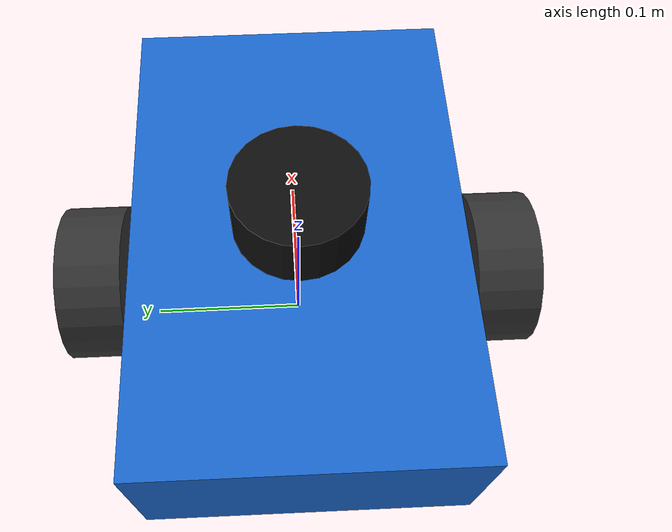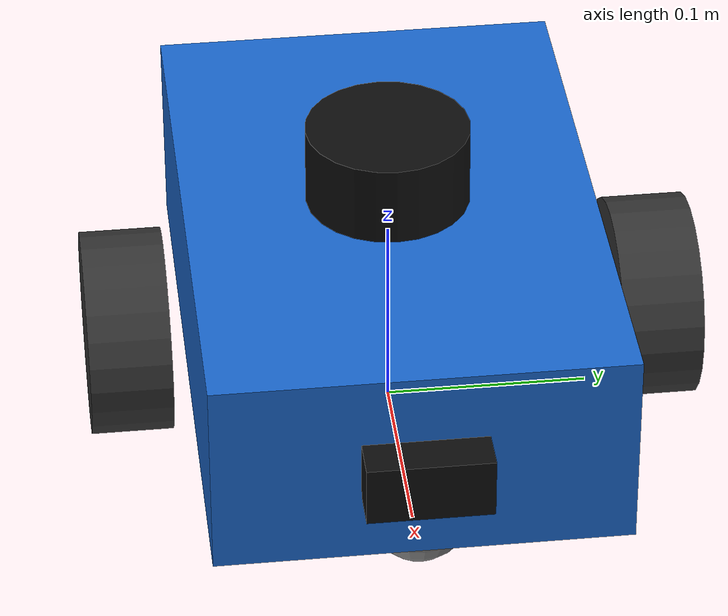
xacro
<?xml version="1.0"?>
<!-- Copyright 2026 Paulo
     Licensed under the Apache License, Version 2.0
     http://www.apache.org/licenses/LICENSE-2.0 -->
<robot name="robot" xmlns:xacro="http://www.ros.org/wiki/xacro">

  <!-- ── global parameters ── -->
  <xacro:property name="chassis_length" value="0.30"/>
  <xacro:property name="chassis_width"  value="0.20"/>
  <xacro:property name="chassis_height" value="0.10"/>
  <xacro:property name="chassis_mass"   value="2.0"/>

  <xacro:property name="wheel_radius"   value="0.05"/>
  <xacro:property name="wheel_width"    value="0.04"/>
  <xacro:property name="wheel_mass"     value="0.3"/>
  <xacro:property name="wheel_offset_y" value="0.13"/>
  <xacro:property name="wheel_offset_z" value="-0.02"/>

  <xacro:property name="caster_radius"  value="0.025"/>
  <xacro:property name="caster_mass"    value="0.1"/>

  <xacro:property name="camera_length"  value="0.02"/>
  <xacro:property name="camera_width"   value="0.06"/>
  <xacro:property name="camera_height"  value="0.03"/>
  <xacro:property name="camera_mass"    value="0.05"/>

  <xacro:property name="base_height"    value="${wheel_radius - wheel_offset_z}"/>

  <!-- ── Macro: Box inertia ── -->
  <xacro:macro name="inertia_box" params="mass l w h">
    <inertial>
      <mass value="${mass}"/>
      <inertia
        ixx="${(1/12)*mass*(w*w + h*h)}"
        iyy="${(1/12)*mass*(l*l + h*h)}"
        izz="${(1/12)*mass*(l*l + w*w)}"
        ixy="0" ixz="0" iyz="0"/>
    </inertial>
  </xacro:macro>

  <!-- ── Macro: cyylinder inertia ── -->
  <xacro:macro name="inertia_cylinder" params="mass r h">
    <inertial>
      <mass value="${mass}"/>
      <inertia
        ixx="${(1/12)*mass*(3*r*r + h*h)}"
        iyy="${(1/12)*mass*(3*r*r + h*h)}"
        izz="${(1/2)*mass*r*r}"
        ixy="0" ixz="0" iyz="0"/>
    </inertial>
  </xacro:macro>

  <!-- ── Macro: wheel (reusable for left and right) ── -->
  <xacro:macro name="wheel" params="name y_offset">
    <link name="${name}_wheel">
      <visual>
        <geometry>
          <cylinder radius="${wheel_radius}" length="${wheel_width}"/>
        </geometry>
        <material name="dark_gray">
          <color rgba="0.2 0.2 0.2 1"/>
        </material>
      </visual>
      <collision>
        <geometry>
          <sphere radius="${wheel_radius}"/>
        </geometry>
      </collision>
      <xacro:inertia_cylinder
        mass="${wheel_mass}"
        r="${wheel_radius}"
        h="${wheel_width}"/>
    </link>

    <joint name="${name}_wheel_joint" type="continuous">
      <parent link="base_link"/>
      <child  link="${name}_wheel"/>
      <!-- The wheel is located on the side of the chassis, rotated -90° on the X-axis
           so the joint axis (z) points to +Y: positive velocity = forward -->
      <origin xyz="0 ${y_offset} ${wheel_offset_z}"
              rpy="${-pi/2} 0 0"/>
      <axis xyz="0 0 1"/>
    </joint>
  </xacro:macro>

  <!-- ══════════════════════════════════════════
       LINKS E JOINTS
  ══════════════════════════════════════════ -->

  <!-- base_footprint: point on the ground, center of the robot -->
  <link name="base_footprint"/>

  <!-- base_link: geometric center of the chassis -->
  <link name="base_link">
    <visual>
      <geometry>
        <box size="${chassis_length} ${chassis_width} ${chassis_height}"/>
      </geometry>
      <material name="blue">
        <color rgba="0.1 0.4 0.8 1"/>
      </material>
    </visual>
    <collision>
      <geometry>
        <box size="${chassis_length} ${chassis_width} ${chassis_height}"/>
      </geometry>
    </collision>
    <xacro:inertia_box
      mass="${chassis_mass}"
      l="${chassis_length}"
      w="${chassis_width}"
      h="${chassis_height}"/>
  </link>

  <joint name="base_footprint_joint" type="fixed">
    <parent link="base_footprint"/>
    <child  link="base_link"/>
    <!-- the chassis is raised so the wheels rest on the ground -->
    <origin xyz="0 0 ${base_height}" rpy="0 0 0"/>
  </joint>

  <!-- Drive wheels (reused macro) -->
  <xacro:wheel name="left"  y_offset=" ${wheel_offset_y}"/>
  <xacro:wheel name="right" y_offset="-${wheel_offset_y}"/>

  <!-- Front support wheel (caster) -->
  <link name="caster_wheel">
    <visual>
      <geometry><sphere radius="${caster_radius}"/></geometry>
      <material name="gray"><color rgba="0.5 0.5 0.5 1"/></material>
    </visual>
    <collision>
      <geometry><sphere radius="${caster_radius}"/></geometry>
    </collision>
    <inertial>
      <mass value="${caster_mass}"/>
      <inertia ixx="0.0001" iyy="0.0001" izz="0.0001"
               ixy="0" ixz="0" iyz="0"/>
    </inertial>
  </link>

  <joint name="caster_joint" type="fixed">
    <parent link="base_link"/>
    <child  link="caster_wheel"/>
    <!-- caster center is caster_radius above the ground, so it touches the
         floor at the same height as the drive wheels -->
    <origin xyz="${chassis_length/2 - caster_radius} 0
                 ${caster_radius - base_height}"
            rpy="0 0 0"/>
  </joint>

  <!-- Lidar Support -->
  <link name="lidar_link">
    <visual>
      <geometry><cylinder radius="0.04" length="0.04"/></geometry>
      <material name="black"><color rgba="0.05 0.05 0.05 1"/></material>
    </visual>
    <collision>
      <geometry><cylinder radius="0.04" length="0.04"/></geometry>
    </collision>
    <inertial>
      <mass value="0.1"/>
      <inertia ixx="0.00003" iyy="0.00003" izz="0.00005"
               ixy="0" ixz="0" iyz="0"/>
    </inertial>
  </link>

  <joint name="lidar_joint" type="fixed">
    <parent link="base_link"/>
    <child  link="lidar_link"/>
    <origin xyz="0 0 ${chassis_height/2 + 0.02}" rpy="0 0 0"/>
  </joint>

  <!-- IMU: at the center of the chassis, aligned with base_link -->
  <link name="imu_link">
    <visual>
      <geometry><box size="0.02 0.02 0.01"/></geometry>
      <material name="green"><color rgba="0.1 0.7 0.2 1"/></material>
    </visual>
    <xacro:inertia_box mass="0.01" l="0.02" w="0.02" h="0.01"/>
  </link>

  <joint name="imu_joint" type="fixed">
    <parent link="base_link"/>
    <child  link="imu_link"/>
    <origin xyz="0 0 0" rpy="0 0 0"/>
  </joint>

  <!-- Camera: on the front face of the chassis, below the Lidar scan plane
       so the Lidar doesn't see it as an obstacle -->
  <link name="camera_link">
    <visual>
      <geometry>
        <box size="${camera_length} ${camera_width} ${camera_height}"/>
      </geometry>
      <material name="black"><color rgba="0.05 0.05 0.05 1"/></material>
    </visual>
    <collision>
      <geometry>
        <box size="${camera_length} ${camera_width} ${camera_height}"/>
      </geometry>
    </collision>
    <xacro:inertia_box
      mass="${camera_mass}"
      l="${camera_length}"
      w="${camera_width}"
      h="${camera_height}"/>
  </link>

  <joint name="camera_joint" type="fixed">
    <parent link="base_link"/>
    <child  link="camera_link"/>
    <origin xyz="${chassis_length/2 + camera_length/2} 0 0" rpy="0 0 0"/>
  </joint>

  <!-- Optical frame (REP 103): z forward, x right, y down. Image messages
       are expressed in this frame, while camera_link keeps the robot
       convention (x forward, y left, z up). -->
  <link name="camera_optical_link"/>

  <joint name="camera_optical_joint" type="fixed">
    <parent link="camera_link"/>
    <child  link="camera_optical_link"/>
    <origin xyz="0 0 0" rpy="${-pi/2} 0 ${-pi/2}"/>
  </joint>

  <!-- Gazebo plugins and material properties -->
  <xacro:include filename="$(find robot_description)/urdf/gazebo.xacro"/>

</robot>
